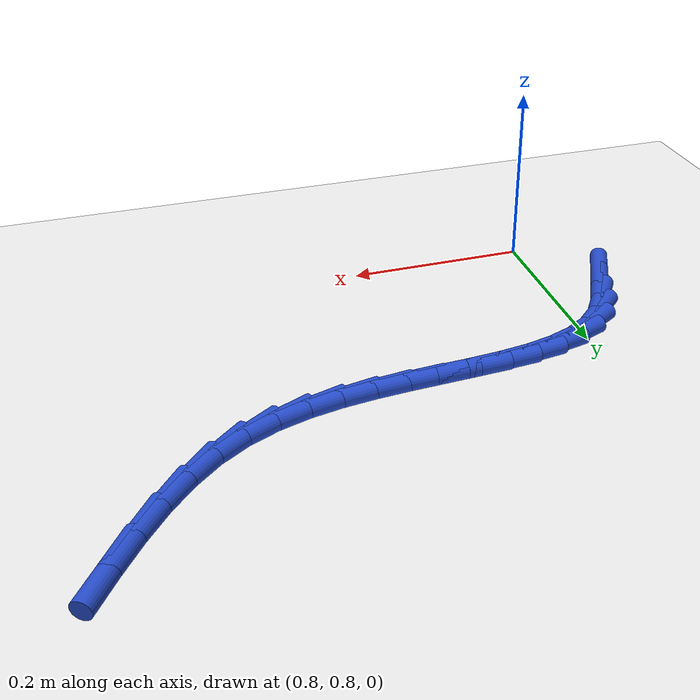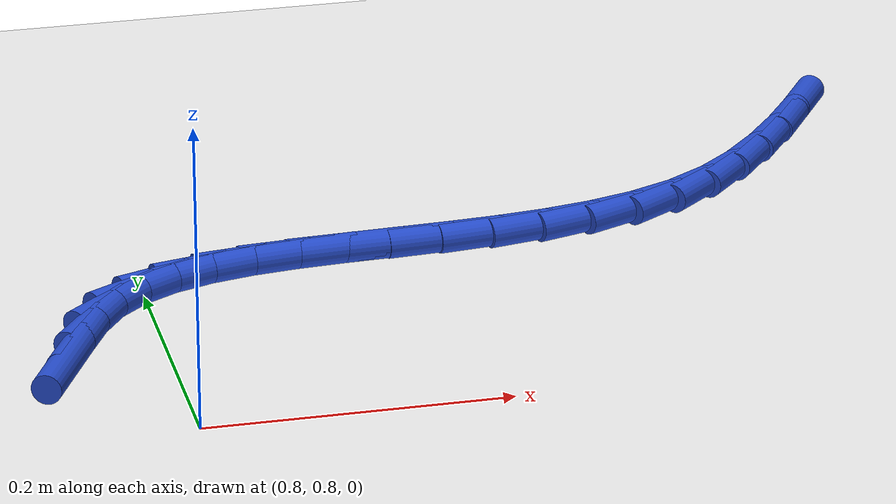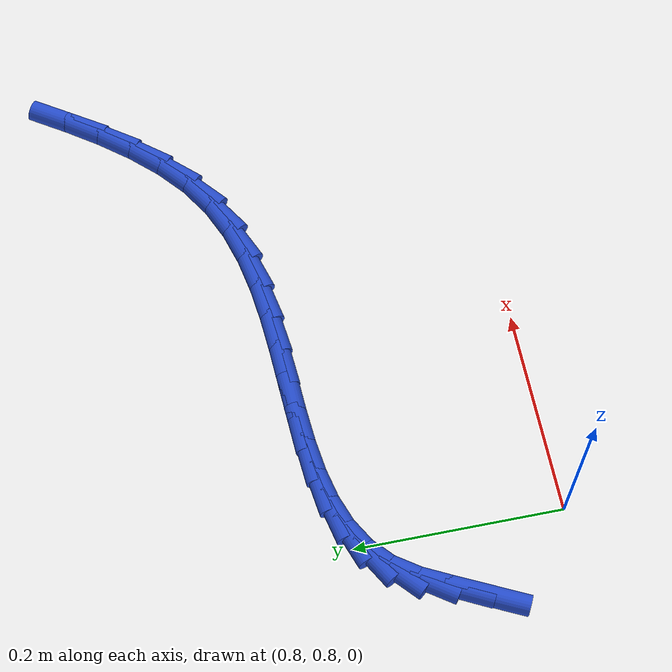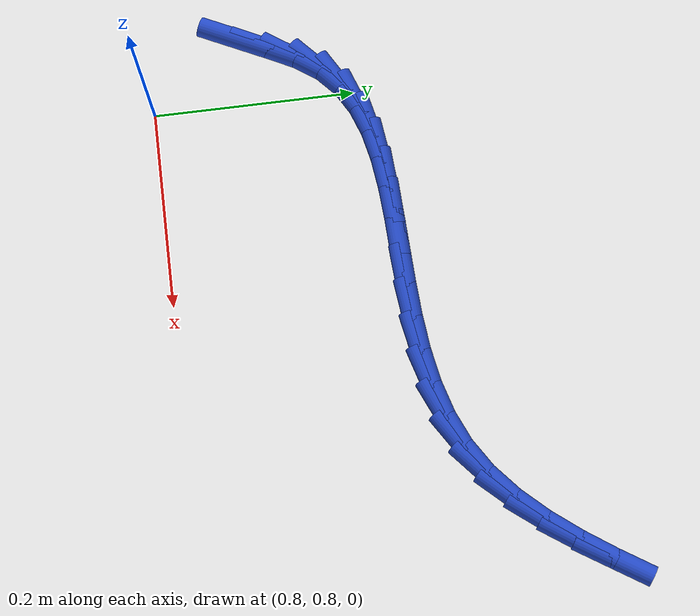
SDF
<sdf version="1.6">
 <world name="default">
  <model name="ground_plane">
   <static>1</static>
   <link name="link">
    <collision name="collision">
     <geometry><plane><normal>0 0 1</normal><size>100 100</size></plane></geometry>
     <surface><friction><ode><mu>100</mu><mu2>50</mu2></ode></friction></surface>
    </collision>
    <visual name="visual">
     <cast_shadows>0</cast_shadows>
     <geometry><plane><normal>0 0 1</normal><size>100 100</size></plane></geometry>
     <material>
      <script><uri>file://media/materials/scripts/gazebo.material</uri><name>Gazebo/WhiteGlow</name></script>
     </material>
    </visual>
   </link>
  </model>
  <model name="line">
   <link name="link_39">
    <pose>0.7311849538564488 0.8908439222533747 0.01 0 1.57 1.1142629824593673</pose>
    <collision name="collision">
     <geometry><cylinder><radius>0.01</radius><length>0.08</length></cylinder></geometry>
    </collision>
    <visual name="visual">
     <material>
      <script><name>Gazebo/Blue</name><uri>file://media/materials/scripts/gazebo.material</uri></script>
     </material>
     <geometry><cylinder><radius>0.01</radius><length>0.08</length></cylinder></geometry>
    </visual>
   </link>
   <link name="link_40">
    <pose>0.7453793986582609 0.9197450237053043 0.01 0 1.57 1.100254172061006</pose>
    <collision name="collision">
     <geometry><cylinder><radius>0.01</radius><length>0.08</length></cylinder></geometry>
    </collision>
    <visual name="visual">
     <material>
      <script><name>Gazebo/Blue</name><uri>file://media/materials/scripts/gazebo.material</uri></script>
     </material>
     <geometry><cylinder><radius>0.01</radius><length>0.08</length></cylinder></geometry>
    </visual>
   </link>
   <link name="link_41">
    <pose>0.7594753394588776 0.9474575816074924 0.01 0 1.57 0.9621424991500096</pose>
    <collision name="collision">
     <geometry><cylinder><radius>0.01</radius><length>0.08</length></cylinder></geometry>
    </collision>
    <visual name="visual">
     <material>
      <script><name>Gazebo/Blue</name><uri>file://media/materials/scripts/gazebo.material</uri></script>
     </material>
     <geometry><cylinder><radius>0.01</radius><length>0.08</length></cylinder></geometry>
    </visual>
   </link>
   <link name="link_42">
    <pose>0.7759729331753005 0.9711298325374123 0.01 0 1.57 0.733224505251834</pose>
    <collision name="collision">
     <geometry><cylinder><radius>0.01</radius><length>0.08</length></cylinder></geometry>
    </collision>
    <visual name="visual">
     <material>
      <script><name>Gazebo/Blue</name><uri>file://media/materials/scripts/gazebo.material</uri></script>
     </material>
     <geometry><cylinder><radius>0.01</radius><length>0.08</length></cylinder></geometry>
    </visual>
   </link>
   <link name="link_43">
    <pose>0.7962030015291083 0.9893518904730628 0.01 0 1.57 0.5162934782600339</pose>
    <collision name="collision">
     <geometry><cylinder><radius>0.01</radius><length>0.08</length></cylinder></geometry>
    </collision>
    <visual name="visual">
     <material>
      <script><name>Gazebo/Blue</name><uri>file://media/materials/scripts/gazebo.material</uri></script>
     </material>
     <geometry><cylinder><radius>0.01</radius><length>0.08</length></cylinder></geometry>
    </visual>
   </link>
   <link name="link_44">
    <pose>0.8198326947566742 1.0027653002617185 0.01 0 1.57 0.34014566376443633</pose>
    <collision name="collision">
     <geometry><cylinder><radius>0.01</radius><length>0.08</length></cylinder></geometry>
    </collision>
    <visual name="visual">
     <material>
      <script><name>Gazebo/Blue</name><uri>file://media/materials/scripts/gazebo.material</uri></script>
     </material>
     <geometry><cylinder><radius>0.01</radius><length>0.08</length></cylinder></geometry>
    </visual>
   </link>
   <link name="link_45">
    <pose>0.8464021325058383 1.0121682449289093 0.01 0 1.57 0.20996784043331987</pose>
    <collision name="collision">
     <geometry><cylinder><radius>0.01</radius><length>0.08</length></cylinder></geometry>
    </collision>
    <visual name="visual">
     <material>
      <script><name>Gazebo/Blue</name><uri>file://media/materials/scripts/gazebo.material</uri></script>
     </material>
     <geometry><cylinder><radius>0.01</radius><length>0.08</length></cylinder></geometry>
    </visual>
   </link>
   <link name="link_46">
    <pose>0.875451434424441 1.0183589075001658 0.01 0 1.57 0.12095955384446175</pose>
    <collision name="collision">
     <geometry><cylinder><radius>0.01</radius><length>0.08</length></cylinder></geometry>
    </collision>
    <visual name="visual">
     <material>
      <script><name>Gazebo/Blue</name><uri>file://media/materials/scripts/gazebo.material</uri></script>
     </material>
     <geometry><cylinder><radius>0.01</radius><length>0.08</length></cylinder></geometry>
    </visual>
   </link>
   <link name="link_47">
    <pose>0.9065207201603223 1.0221354710010182 0.01 0 1.57 0.0661213031515337</pose>
    <collision name="collision">
     <geometry><cylinder><radius>0.01</radius><length>0.08</length></cylinder></geometry>
    </collision>
    <visual name="visual">
     <material>
      <script><name>Gazebo/Blue</name><uri>file://media/materials/scripts/gazebo.material</uri></script>
     </material>
     <geometry><cylinder><radius>0.01</radius><length>0.08</length></cylinder></geometry>
    </visual>
   </link>
   <link name="link_48">
    <pose>0.939150109361322 1.0242961184569968 0.01 0 1.57 0.039793090971080046</pose>
    <collision name="collision">
     <geometry><cylinder><radius>0.01</radius><length>0.08</length></cylinder></geometry>
    </collision>
    <visual name="visual">
     <material>
      <script><name>Gazebo/Blue</name><uri>file://media/materials/scripts/gazebo.material</uri></script>
     </material>
     <geometry><cylinder><radius>0.01</radius><length>0.08</length></cylinder></geometry>
    </visual>
   </link>
   <link name="link_49">
    <pose>0.9728797216752806 1.025639032893632 0.01 0 1.57 0.038484515006668364</pose>
    <collision name="collision">
     <geometry><cylinder><radius>0.01</radius><length>0.08</length></cylinder></geometry>
    </collision>
    <visual name="visual">
     <material>
      <script><name>Gazebo/Blue</name><uri>file://media/materials/scripts/gazebo.material</uri></script>
     </material>
     <geometry><cylinder><radius>0.01</radius><length>0.08</length></cylinder></geometry>
    </visual>
   </link>
   <link name="link_50">
    <pose>1.0072496767500383 1.026962397336454 0.01 0 1.57 0.060763660077093266</pose>
    <collision name="collision">
     <geometry><cylinder><radius>0.01</radius><length>0.08</length></cylinder></geometry>
    </collision>
    <visual name="visual">
     <material>
      <script><name>Gazebo/Blue</name><uri>file://media/materials/scripts/gazebo.material</uri></script>
     </material>
     <geometry><cylinder><radius>0.01</radius><length>0.08</length></cylinder></geometry>
    </visual>
   </link>
   <link name="link_51">
    <pose>1.041800094233435 1.029064394810993 0.01 0 1.57 0.10693531760168003</pose>
    <collision name="collision">
     <geometry><cylinder><radius>0.01</radius><length>0.08</length></cylinder></geometry>
    </collision>
    <visual name="visual">
     <material>
      <script><name>Gazebo/Blue</name><uri>file://media/materials/scripts/gazebo.material</uri></script>
     </material>
     <geometry><cylinder><radius>0.01</radius><length>0.08</length></cylinder></geometry>
    </visual>
   </link>
   <link name="link_52">
    <pose>1.0760710937733098 1.032743208342779 0.01 0 1.57 0.1786159209958354</pose>
    <collision name="collision">
     <geometry><cylinder><radius>0.01</radius><length>0.08</length></cylinder></geometry>
    </collision>
    <visual name="visual">
     <material>
      <script><name>Gazebo/Blue</name><uri>file://media/materials/scripts/gazebo.material</uri></script>
     </material>
     <geometry><cylinder><radius>0.01</radius><length>0.08</length></cylinder></geometry>
    </visual>
   </link>
   <link name="link_53">
    <pose>1.1096027950175047 1.038797020957343 0.01 0 1.57 0.27798884268821783</pose>
    <collision name="collision">
     <geometry><cylinder><radius>0.01</radius><length>0.08</length></cylinder></geometry>
    </collision>
    <visual name="visual">
     <material>
      <script><name>Gazebo/Blue</name><uri>file://media/materials/scripts/gazebo.material</uri></script>
     </material>
     <geometry><cylinder><radius>0.01</radius><length>0.08</length></cylinder></geometry>
    </visual>
   </link>
   <link name="link_54">
    <pose>1.1419353176138585 1.0480240156802145 0.01 0 1.57 0.4063393460674552</pose>
    <collision name="collision">
     <geometry><cylinder><radius>0.01</radius><length>0.08</length></cylinder></geometry>
    </collision>
    <visual name="visual">
     <material>
      <script><name>Gazebo/Blue</name><uri>file://media/materials/scripts/gazebo.material</uri></script>
     </material>
     <geometry><cylinder><radius>0.01</radius><length>0.08</length></cylinder></geometry>
    </visual>
   </link>
   <link name="link_55">
    <pose>1.172608781210212 1.0612223755369248 0.01 0 1.57 0.560175437924606</pose>
    <collision name="collision">
     <geometry><cylinder><radius>0.01</radius><length>0.08</length></cylinder></geometry>
    </collision>
    <visual name="visual">
     <material>
      <script><name>Gazebo/Blue</name><uri>file://media/materials/scripts/gazebo.material</uri></script>
     </material>
     <geometry><cylinder><radius>0.01</radius><length>0.08</length></cylinder></geometry>
    </visual>
   </link>
   <link name="link_56">
    <pose>1.201181350799106 1.0791429185618482 0.01 0 1.57 0.7058190704599503</pose>
    <collision name="collision">
     <geometry><cylinder><radius>0.01</radius><length>0.08</length></cylinder></geometry>
    </collision>
    <visual name="visual">
     <material>
      <script><name>Gazebo/Blue</name><uri>file://media/materials/scripts/gazebo.material</uri></script>
     </material>
     <geometry><cylinder><radius>0.01</radius><length>0.08</length></cylinder></geometry>
    </visual>
   </link>
   <link name="link_57">
    <pose>1.2275588137413713 1.101624031873132 0.01 0 1.57 0.8181723876559537</pose>
    <collision name="collision">
     <geometry><cylinder><radius>0.01</radius><length>0.08</length></cylinder></geometry>
    </collision>
    <visual name="visual">
     <material>
      <script><name>Gazebo/Blue</name><uri>file://media/materials/scripts/gazebo.material</uri></script>
     </material>
     <geometry><cylinder><radius>0.01</radius><length>0.08</length></cylinder></geometry>
    </visual>
   </link>
   <link name="link_58">
    <pose>1.251960798367414 1.1276803402837894 0.01 0 1.57 0.9011009147359261</pose>
    <collision name="collision">
     <geometry><cylinder><radius>0.01</radius><length>0.08</length></cylinder></geometry>
    </collision>
    <visual name="visual">
     <material>
      <script><name>Gazebo/Blue</name><uri>file://media/materials/scripts/gazebo.material</uri></script>
     </material>
     <geometry><cylinder><radius>0.01</radius><length>0.08</length></cylinder></geometry>
    </visual>
   </link>
   <link name="link_59">
    <pose>1.274618199930036 1.1562968954571624 0.01 0 1.57 0.9593938817962042</pose>
    <collision name="collision">
     <geometry><cylinder><radius>0.01</radius><length>0.08</length></cylinder></geometry>
    </collision>
    <visual name="visual">
     <material>
      <script><name>Gazebo/Blue</name><uri>file://media/materials/scripts/gazebo.material</uri></script>
     </material>
     <geometry><cylinder><radius>0.01</radius><length>0.08</length></cylinder></geometry>
    </visual>
   </link>
   <link name="link_60">
    <pose>1.2957619136820395 1.1864587490565932 0.01 0 1.57 0.996462560337881</pose>
    <collision name="collision">
     <geometry><cylinder><radius>0.01</radius><length>0.08</length></cylinder></geometry>
    </collision>
    <visual name="visual">
     <material>
      <script><name>Gazebo/Blue</name><uri>file://media/materials/scripts/gazebo.material</uri></script>
     </material>
     <geometry><cylinder><radius>0.01</radius><length>0.08</length></cylinder></geometry>
    </visual>
   </link>
  </model>
 </world>
</sdf>
